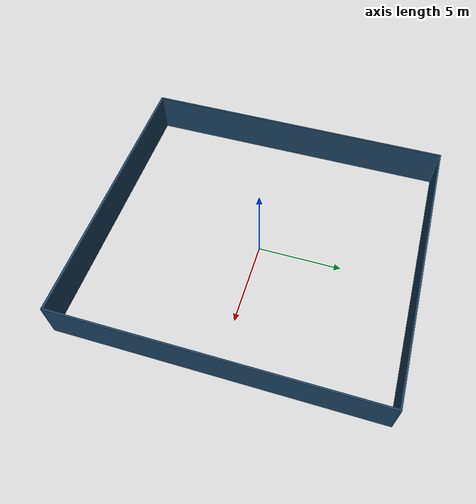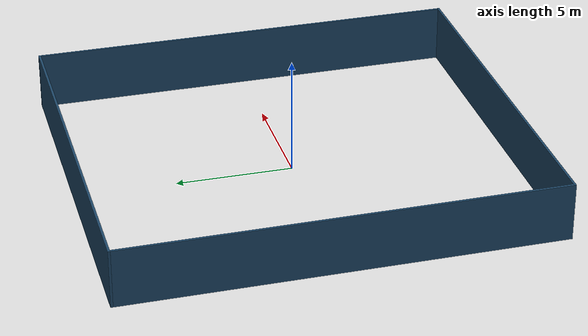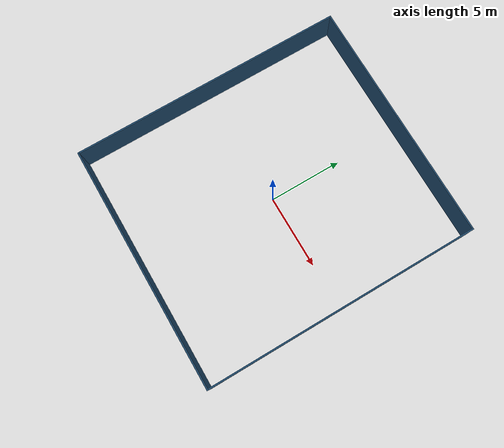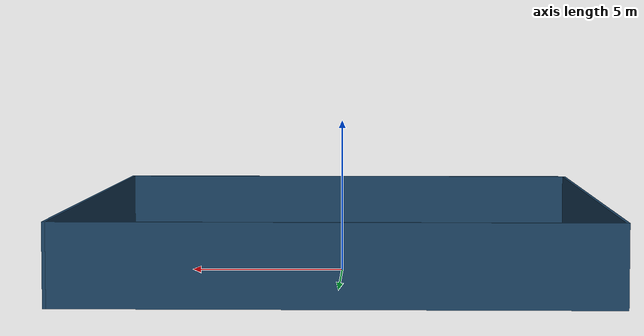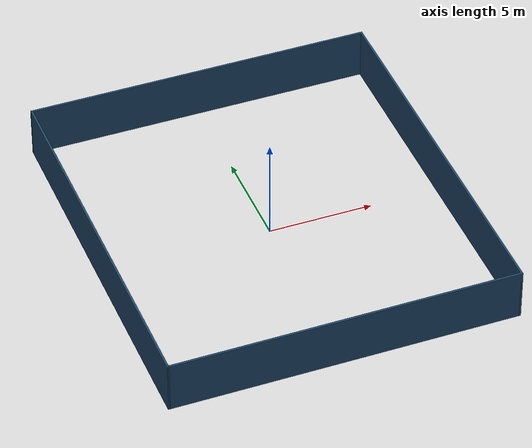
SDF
<?xml version='1.0'?>
<sdf version='1.6'>
  <model name='walls'>
    <pose frame=''>0 0 0 0 -0 0</pose>
    <link name='right'>
      <collision name='right_collision'>
        <geometry>
          <box>
            <size>16.7 0.1 2.5</size>
          </box>
        </geometry>
        <pose frame=''>0 0 1.25 0 -0 0</pose>
      </collision>
      <visual name='right_visual'>
        <pose frame=''>0 0 1.25 0 -0 0</pose>
        <geometry>
          <box>
            <size>16.7 0.1 2.5</size>
          </box>
        </geometry>
        <material>
          <script>
            <uri>file://media/materials/scripts/gazebo.material</uri>
            <name>Gazebo/Grey</name>
          </script>
          <ambient>0.11 0.27 0.4 1</ambient>
        </material>
        <meta>
          <layer>0</layer>
        </meta>
      </visual>
      <pose frame=''>0 -9.3 0 0 -0 0</pose>
    </link>
    <link name='back'>
      <collision name='back_collision'>
        <geometry>
          <box>
            <size>18.7 0.1 2.5</size>
          </box>
        </geometry>
        <pose frame=''>0 0 1.25 0 -0 0</pose>
      </collision>
      <visual name='back_visual'>
        <pose frame=''>0 0 1.25 0 -0 0</pose>
        <geometry>
          <box>
            <size>18.7 0.1 2.5</size>
          </box>
        </geometry>
        <material>
          <script>
            <uri>file://media/materials/scripts/gazebo.material</uri>
            <name>Gazebo/Grey</name>
          </script>
          <ambient>0.11 0.27 0.4 1</ambient>
        </material>
        <meta>
          <layer>0</layer>
        </meta>
      </visual>
      <pose frame=''>8.3 0 0 0 -0 1.5708</pose>
    </link>
    <link name='left'>
      <collision name='left_collision'>
        <geometry>
          <box>
            <size>16.7 0.1 2.5</size>
          </box>
        </geometry>
        <pose frame=''>0 0 1.25 0 -0 0</pose>
      </collision>
      <visual name='left_visual'>
        <pose frame=''>0 0 1.25 0 -0 0</pose>
        <geometry>
          <box>
            <size>16.7 0.1 2.5</size>
          </box>
        </geometry>
        <material>
          <script>
            <uri>file://media/materials/scripts/gazebo.material</uri>
            <name>Gazebo/Grey</name>
          </script>
          <ambient>0.11 0.27 0.4 1</ambient>
        </material>
        <meta>
          <layer>0</layer>
        </meta>
      </visual>
      <pose frame=''>0 9.3 0 0 -0 3.14159</pose>
    </link>
    <link name='front'>
      <collision name='front_collision'>
        <geometry>
          <box>
            <size>18.7 0.1 2.5</size>
          </box>
        </geometry>
        <pose frame=''>0 0 1.25 0 -0 0</pose>
      </collision>
      <visual name='front_visual'>
        <pose frame=''>0 0 1.25 0 -0 0</pose>
        <geometry>
          <box>
            <size>18.7 0.1 2.5</size>
          </box>
        </geometry>
        <material>
          <script>
            <uri>file://media/materials/scripts/gazebo.material</uri>
            <name>Gazebo/Grey</name>
          </script>
          <ambient>0.11 0.27 0.4 1</ambient>
        </material>
        <meta>
          <layer>0</layer>
        </meta>
      </visual>
      <pose frame=''>-8.3 0 0 0 -0 -1.5708</pose>
    </link>
    <static>1</static>
  </model>
</sdf>
